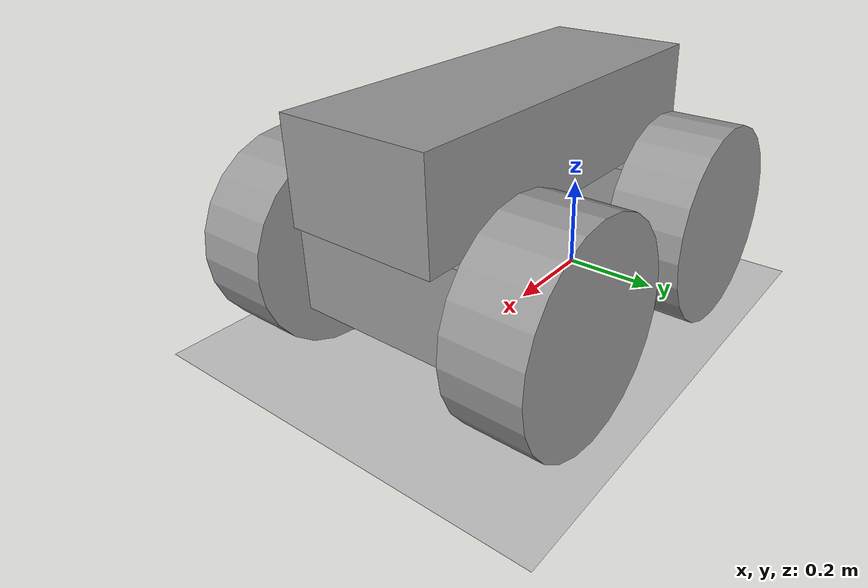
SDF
<sdf version="1.6">
 <world name="default">
  <light name="sun" type="directional">
   <pose>0 0 10 0 -0 0</pose>
   <diffuse>0.8 0.8 0.8 1</diffuse>
   <specular>0.2 0.2 0.2 1</specular>
   <attenuation>
    <range>1000</range>
    <constant>0.9</constant>
    <linear>0.01</linear>
    <quadratic>0.001</quadratic>
   </attenuation>
   <direction>-0.5 0.1 -0.9</direction>
  </light>
  <model name="ground_plane">
   <static>1</static>
   <link name="link">
    <collision name="collision">
     <geometry><plane><normal>0 0 1</normal><size>100 100</size></plane></geometry>
     <surface>
      <contact><collide_bitmask>65535</collide_bitmask></contact>
      <friction><ode><mu>100</mu><mu2>50</mu2></ode></friction>
     </surface>
    </collision>
    <visual name="visual">
     <cast_shadows>0</cast_shadows>
     <geometry><plane><normal>0 0 1</normal><size>100 100</size></plane></geometry>
     <material>
      <script><uri>file://media/materials/scripts/gazebo.material</uri><name>Gazebo/Grey</name></script>
     </material>
    </visual>
   </link>
  </model>
  <gravity>0 0 -9.8</gravity>
  <magnetic_field>6e-06 2.3e-05 -4.2e-05</magnetic_field>
  <atmosphere type="adiabatic"/>
  <physics name="default_physics" default="0" type="ode">
   <max_step_size>0.001</max_step_size>
   <real_time_factor>1</real_time_factor>
   <real_time_update_rate>1000</real_time_update_rate>
  </physics>
  <scene><ambient>0.4 0.4 0.4 1</ambient><background>0.7 0.7 0.7 1</background><shadows>1</shadows></scene>
  <spherical_coordinates>
   <surface_model>EARTH_WGS84</surface_model>
   <latitude_deg>0</latitude_deg>
   <longitude_deg>0</longitude_deg>
   <elevation>0</elevation>
   <heading_deg>0</heading_deg>
  </spherical_coordinates>
  <model name="Robot">
   <link name="link_0">
    <pose>-0.255714 0 -0.028571 0 -0 0</pose>
    <inertial>
     <mass>1</mass>
     <inertia>
      <ixx>0.166667</ixx>
      <ixy>0</ixy>
      <ixz>0</ixz>
      <iyy>0.166667</iyy>
      <iyz>0</iyz>
      <izz>0.166667</izz>
     </inertia>
    </inertial>
    <visual name="visual">
     <geometry><box><size>0.2 0.4 0.2</size></box></geometry>
     <material>
      <lighting>1</lighting>
      <script><uri>file://media/materials/scripts/gazebo.material</uri><name>Gazebo/Grey</name></script>
      <shader type="pixel"><normal_map>__default__</normal_map></shader>
      <ambient>0.3 0.3 0.3 1</ambient>
      <diffuse>0.7 0.7 0.7 1</diffuse>
      <specular>0.01 0.01 0.01 1</specular>
      <emissive>0 0 0 1</emissive>
     </material>
    </visual>
    <collision name="collision">
     <geometry><box><size>0.2 0.4 0.2</size></box></geometry>
     <surface>
      <friction>
       <ode><mu>1</mu><mu2>1</mu2><fdir1>0 0 0</fdir1><slip1>0</slip1><slip2>0</slip2></ode>
       <torsional>
        <coefficient>1</coefficient>
        <patch_radius>0</patch_radius>
        <surface_radius>0</surface_radius>
        <use_patch_radius>1</use_patch_radius>
        <ode><slip>0</slip></ode>
       </torsional>
      </friction>
      <bounce><restitution_coefficient>0</restitution_coefficient><threshold>1e+06</threshold></bounce>
      <contact>
       <collide_without_contact>0</collide_without_contact>
       <collide_without_contact_bitmask>1</collide_without_contact_bitmask>
       <collide_bitmask>1</collide_bitmask>
       <ode>
        <soft_cfm>0</soft_cfm>
        <soft_erp>0.2</soft_erp>
        <kp>1e+13</kp>
        <kd>1</kd>
        <max_vel>0.01</max_vel>
        <min_depth>0</min_depth>
       </ode>
       <bullet>
        <split_impulse>1</split_impulse>
        <split_impulse_penetration_threshold>-0.01</split_impulse_penetration_threshold>
        <soft_cfm>0</soft_cfm>
        <soft_erp>0.2</soft_erp>
        <kp>1e+13</kp>
        <kd>1</kd>
       </bullet>
      </contact>
     </surface>
    </collision>
   </link>
   <link name="link_0_clone">
    <pose>0.244286 0 -0.028571 0 -0 0</pose>
    <inertial>
     <mass>1</mass>
     <inertia>
      <ixx>0.166667</ixx>
      <ixy>0</ixy>
      <ixz>0</ixz>
      <iyy>0.166667</iyy>
      <iyz>0</iyz>
      <izz>0.166667</izz>
     </inertia>
    </inertial>
    <visual name="visual">
     <geometry><box><size>0.2 0.4 0.2</size></box></geometry>
     <material>
      <lighting>1</lighting>
      <script><uri>file://media/materials/scripts/gazebo.material</uri><name>Gazebo/Grey</name></script>
      <shader type="pixel"><normal_map>__default__</normal_map></shader>
      <ambient>0.3 0.3 0.3 1</ambient>
      <diffuse>0.7 0.7 0.7 1</diffuse>
      <specular>0.01 0.01 0.01 1</specular>
      <emissive>0 0 0 1</emissive>
     </material>
    </visual>
    <collision name="collision">
     <geometry><box><size>0.2 0.4 0.2</size></box></geometry>
     <surface>
      <friction>
       <ode><mu>1</mu><mu2>1</mu2><fdir1>0 0 0</fdir1><slip1>0</slip1><slip2>0</slip2></ode>
       <torsional>
        <coefficient>1</coefficient>
        <patch_radius>0</patch_radius>
        <surface_radius>0</surface_radius>
        <use_patch_radius>1</use_patch_radius>
        <ode><slip>0</slip></ode>
       </torsional>
      </friction>
      <bounce><restitution_coefficient>0</restitution_coefficient><threshold>1e+06</threshold></bounce>
      <contact>
       <collide_without_contact>0</collide_without_contact>
       <collide_without_contact_bitmask>1</collide_without_contact_bitmask>
       <collide_bitmask>1</collide_bitmask>
       <ode>
        <soft_cfm>0</soft_cfm>
        <soft_erp>0.2</soft_erp>
        <kp>1e+13</kp>
        <kd>1</kd>
        <max_vel>0.01</max_vel>
        <min_depth>0</min_depth>
       </ode>
       <bullet>
        <split_impulse>1</split_impulse>
        <split_impulse_penetration_threshold>-0.01</split_impulse_penetration_threshold>
        <soft_cfm>0</soft_cfm>
        <soft_erp>0.2</soft_erp>
        <kp>1e+13</kp>
        <kd>1</kd>
       </bullet>
      </contact>
     </surface>
    </collision>
   </link>
   <link name="link_1">
    <pose>-0.235714 -0.275019 -0.028571 1.5707 -0 0</pose>
    <inertial>
     <mass>1</mass>
     <inertia><ixx>0.145833</ixx><ixy>0</ixy><ixz>0</ixz><iyy>0.145833</iyy><iyz>0</iyz><izz>0.125</izz></inertia>
    </inertial>
    <visual name="visual">
     <geometry><cylinder><radius>0.2</radius><length>0.15</length></cylinder></geometry>
     <material>
      <lighting>1</lighting>
      <script><uri>file://media/materials/scripts/gazebo.material</uri><name>Gazebo/Grey</name></script>
      <shader type="pixel"><normal_map>__default__</normal_map></shader>
      <ambient>0.3 0.3 0.3 1</ambient>
      <diffuse>0.7 0.7 0.7 1</diffuse>
      <specular>0.01 0.01 0.01 1</specular>
      <emissive>0 0 0 1</emissive>
     </material>
    </visual>
    <collision name="collision">
     <geometry><cylinder><radius>0.2</radius><length>0.15</length></cylinder></geometry>
     <surface>
      <friction>
       <ode><mu>1</mu><mu2>1</mu2><fdir1>0 0 0</fdir1><slip1>0</slip1><slip2>0</slip2></ode>
       <torsional>
        <coefficient>1</coefficient>
        <patch_radius>0</patch_radius>
        <surface_radius>0</surface_radius>
        <use_patch_radius>1</use_patch_radius>
        <ode><slip>0</slip></ode>
       </torsional>
      </friction>
      <bounce><restitution_coefficient>0</restitution_coefficient><threshold>1e+06</threshold></bounce>
      <contact>
       <collide_without_contact>0</collide_without_contact>
       <collide_without_contact_bitmask>1</collide_without_contact_bitmask>
       <collide_bitmask>1</collide_bitmask>
       <ode>
        <soft_cfm>0</soft_cfm>
        <soft_erp>0.2</soft_erp>
        <kp>1e+13</kp>
        <kd>1</kd>
        <max_vel>0.01</max_vel>
        <min_depth>0</min_depth>
       </ode>
       <bullet>
        <split_impulse>1</split_impulse>
        <split_impulse_penetration_threshold>-0.01</split_impulse_penetration_threshold>
        <soft_cfm>0</soft_cfm>
        <soft_erp>0.2</soft_erp>
        <kp>1e+13</kp>
        <kd>1</kd>
       </bullet>
      </contact>
     </surface>
    </collision>
   </link>
   <link name="link_1_clone">
    <pose>-0.235714 0.275019 -0.028571 1.5707 -0 0</pose>
    <inertial>
     <mass>1</mass>
     <inertia><ixx>0.145833</ixx><ixy>0</ixy><ixz>0</ixz><iyy>0.145833</iyy><iyz>0</iyz><izz>0.125</izz></inertia>
    </inertial>
    <visual name="visual">
     <geometry><cylinder><radius>0.2</radius><length>0.15</length></cylinder></geometry>
     <material>
      <lighting>1</lighting>
      <script><uri>file://media/materials/scripts/gazebo.material</uri><name>Gazebo/Grey</name></script>
      <shader type="pixel"><normal_map>__default__</normal_map></shader>
      <ambient>0.3 0.3 0.3 1</ambient>
      <diffuse>0.7 0.7 0.7 1</diffuse>
      <specular>0.01 0.01 0.01 1</specular>
      <emissive>0 0 0 1</emissive>
     </material>
    </visual>
    <collision name="collision">
     <geometry><cylinder><radius>0.2</radius><length>0.15</length></cylinder></geometry>
     <surface>
      <friction>
       <ode><mu>1</mu><mu2>1</mu2><fdir1>0 0 0</fdir1><slip1>0</slip1><slip2>0</slip2></ode>
       <torsional>
        <coefficient>1</coefficient>
        <patch_radius>0</patch_radius>
        <surface_radius>0</surface_radius>
        <use_patch_radius>1</use_patch_radius>
        <ode><slip>0</slip></ode>
       </torsional>
      </friction>
      <bounce><restitution_coefficient>0</restitution_coefficient><threshold>1e+06</threshold></bounce>
      <contact>
       <collide_without_contact>0</collide_without_contact>
       <collide_without_contact_bitmask>1</collide_without_contact_bitmask>
       <collide_bitmask>1</collide_bitmask>
       <ode>
        <soft_cfm>0</soft_cfm>
        <soft_erp>0.2</soft_erp>
        <kp>1e+13</kp>
        <kd>1</kd>
        <max_vel>0.01</max_vel>
        <min_depth>0</min_depth>
       </ode>
       <bullet>
        <split_impulse>1</split_impulse>
        <split_impulse_penetration_threshold>-0.01</split_impulse_penetration_threshold>
        <soft_cfm>0</soft_cfm>
        <soft_erp>0.2</soft_erp>
        <kp>1e+13</kp>
        <kd>1</kd>
       </bullet>
      </contact>
     </surface>
    </collision>
   </link>
   <link name="link_1_clone_0">
    <pose>0.244286 -0.275019 -0.028571 1.5707 -0 0</pose>
    <inertial>
     <mass>1</mass>
     <inertia><ixx>0.145833</ixx><ixy>0</ixy><ixz>0</ixz><iyy>0.145833</iyy><iyz>0</iyz><izz>0.125</izz></inertia>
    </inertial>
    <visual name="visual">
     <geometry><cylinder><radius>0.2</radius><length>0.15</length></cylinder></geometry>
     <material>
      <lighting>1</lighting>
      <script><uri>file://media/materials/scripts/gazebo.material</uri><name>Gazebo/Grey</name></script>
      <shader type="pixel"><normal_map>__default__</normal_map></shader>
      <ambient>0.3 0.3 0.3 1</ambient>
      <diffuse>0.7 0.7 0.7 1</diffuse>
      <specular>0.01 0.01 0.01 1</specular>
      <emissive>0 0 0 1</emissive>
     </material>
    </visual>
    <collision name="collision">
     <geometry><cylinder><radius>0.2</radius><length>0.15</length></cylinder></geometry>
     <surface>
      <friction>
       <ode><mu>1</mu><mu2>1</mu2><fdir1>0 0 0</fdir1><slip1>0</slip1><slip2>0</slip2></ode>
       <torsional>
        <coefficient>1</coefficient>
        <patch_radius>0</patch_radius>
        <surface_radius>0</surface_radius>
        <use_patch_radius>1</use_patch_radius>
        <ode><slip>0</slip></ode>
       </torsional>
      </friction>
      <bounce><restitution_coefficient>0</restitution_coefficient><threshold>1e+06</threshold></bounce>
      <contact>
       <collide_without_contact>0</collide_without_contact>
       <collide_without_contact_bitmask>1</collide_without_contact_bitmask>
       <collide_bitmask>1</collide_bitmask>
       <ode>
        <soft_cfm>0</soft_cfm>
        <soft_erp>0.2</soft_erp>
        <kp>1e+13</kp>
        <kd>1</kd>
        <max_vel>0.01</max_vel>
        <min_depth>0</min_depth>
       </ode>
       <bullet>
        <split_impulse>1</split_impulse>
        <split_impulse_penetration_threshold>-0.01</split_impulse_penetration_threshold>
        <soft_cfm>0</soft_cfm>
        <soft_erp>0.2</soft_erp>
        <kp>1e+13</kp>
        <kd>1</kd>
       </bullet>
      </contact>
     </surface>
    </collision>
   </link>
   <link name="link_1_clone_0_clone">
    <pose>0.244286 0.275019 -0.028571 1.5707 -0 0</pose>
    <inertial>
     <mass>1</mass>
     <inertia><ixx>0.145833</ixx><ixy>0</ixy><ixz>0</ixz><iyy>0.145833</iyy><iyz>0</iyz><izz>0.125</izz></inertia>
    </inertial>
    <visual name="visual">
     <geometry><cylinder><radius>0.2</radius><length>0.15</length></cylinder></geometry>
     <material>
      <lighting>1</lighting>
      <script><uri>file://media/materials/scripts/gazebo.material</uri><name>Gazebo/Grey</name></script>
      <shader type="pixel"><normal_map>__default__</normal_map></shader>
      <ambient>0.3 0.3 0.3 1</ambient>
      <diffuse>0.7 0.7 0.7 1</diffuse>
      <specular>0.01 0.01 0.01 1</specular>
      <emissive>0 0 0 1</emissive>
     </material>
    </visual>
    <collision name="collision">
     <geometry><cylinder><radius>0.2</radius><length>0.15</length></cylinder></geometry>
     <surface>
      <friction>
       <ode><mu>1</mu><mu2>1</mu2><fdir1>0 0 0</fdir1><slip1>0</slip1><slip2>0</slip2></ode>
       <torsional>
        <coefficient>1</coefficient>
        <patch_radius>0</patch_radius>
        <surface_radius>0</surface_radius>
        <use_patch_radius>1</use_patch_radius>
        <ode><slip>0</slip></ode>
       </torsional>
      </friction>
      <bounce><restitution_coefficient>0</restitution_coefficient><threshold>1e+06</threshold></bounce>
      <contact>
       <collide_without_contact>0</collide_without_contact>
       <collide_without_contact_bitmask>1</collide_without_contact_bitmask>
       <collide_bitmask>1</collide_bitmask>
       <ode>
        <soft_cfm>0</soft_cfm>
        <soft_erp>0.2</soft_erp>
        <kp>1e+13</kp>
        <kd>1</kd>
        <max_vel>0.01</max_vel>
        <min_depth>0</min_depth>
       </ode>
       <bullet>
        <split_impulse>1</split_impulse>
        <split_impulse_penetration_threshold>-0.01</split_impulse_penetration_threshold>
        <soft_cfm>0</soft_cfm>
        <soft_erp>0.2</soft_erp>
        <kp>1e+13</kp>
        <kd>1</kd>
       </bullet>
      </contact>
     </surface>
    </collision>
   </link>
   <link name="link_2">
    <pose>-0.005714 0 0.171429 0 -0 0</pose>
    <inertial>
     <mass>1</mass>
     <inertia>
      <ixx>0.166667</ixx>
      <ixy>0</ixy>
      <ixz>0</ixz>
      <iyy>0.166667</iyy>
      <iyz>0</iyz>
      <izz>0.166667</izz>
     </inertia>
    </inertial>
    <visual name="visual">
     <geometry><box><size>0.8 0.3 0.2</size></box></geometry>
     <material>
      <lighting>1</lighting>
      <script><uri>file://media/materials/scripts/gazebo.material</uri><name>Gazebo/Grey</name></script>
      <shader type="pixel"><normal_map>__default__</normal_map></shader>
      <ambient>0.3 0.3 0.3 1</ambient>
      <diffuse>0.7 0.7 0.7 1</diffuse>
      <specular>0.01 0.01 0.01 1</specular>
      <emissive>0 0 0 1</emissive>
     </material>
    </visual>
    <collision name="collision">
     <geometry><box><size>0.8 0.3 0.2</size></box></geometry>
     <surface>
      <friction>
       <ode><mu>1</mu><mu2>1</mu2><fdir1>0 0 0</fdir1><slip1>0</slip1><slip2>0</slip2></ode>
       <torsional>
        <coefficient>1</coefficient>
        <patch_radius>0</patch_radius>
        <surface_radius>0</surface_radius>
        <use_patch_radius>1</use_patch_radius>
        <ode><slip>0</slip></ode>
       </torsional>
      </friction>
      <bounce><restitution_coefficient>0</restitution_coefficient><threshold>1e+06</threshold></bounce>
      <contact>
       <collide_without_contact>0</collide_without_contact>
       <collide_without_contact_bitmask>1</collide_without_contact_bitmask>
       <collide_bitmask>1</collide_bitmask>
       <ode>
        <soft_cfm>0</soft_cfm>
        <soft_erp>0.2</soft_erp>
        <kp>1e+13</kp>
        <kd>1</kd>
        <max_vel>0.01</max_vel>
        <min_depth>0</min_depth>
       </ode>
       <bullet>
        <split_impulse>1</split_impulse>
        <split_impulse_penetration_threshold>-0.01</split_impulse_penetration_threshold>
        <soft_cfm>0</soft_cfm>
        <soft_erp>0.2</soft_erp>
        <kp>1e+13</kp>
        <kd>1</kd>
       </bullet>
      </contact>
     </surface>
    </collision>
   </link>
   <joint name="link_0_JOINT_0" type="revolute">
    <parent>link_0</parent>
    <child>link_1</child>
    <axis>
     <xyz>0 0 1</xyz>
     <use_parent_model_frame>0</use_parent_model_frame>
     <limit>
      <lower>-1.79769e+308</lower>
      <upper>1.79769e+308</upper>
      <effort>-1</effort>
      <velocity>-1</velocity>
     </limit>
     <dynamics>
      <spring_reference>0</spring_reference>
      <spring_stiffness>0</spring_stiffness>
      <damping>0</damping>
     </dynamics>
    </axis>
    <physics>
     <ode><limit><cfm>0</cfm><erp>0.2</erp></limit><suspension><cfm>0</cfm><erp>0.2</erp></suspension></ode>
    </physics>
   </joint>
   <joint name="link_0_JOINT_1" type="revolute">
    <parent>link_0</parent>
    <child>link_1_clone</child>
    <axis>
     <xyz>0 0 1</xyz>
     <use_parent_model_frame>0</use_parent_model_frame>
     <limit>
      <lower>-1.79769e+308</lower>
      <upper>1.79769e+308</upper>
      <effort>-1</effort>
      <velocity>-1</velocity>
     </limit>
     <dynamics>
      <spring_reference>0</spring_reference>
      <spring_stiffness>0</spring_stiffness>
      <damping>0</damping>
     </dynamics>
    </axis>
    <physics>
     <ode><limit><cfm>0</cfm><erp>0.2</erp></limit><suspension><cfm>0</cfm><erp>0.2</erp></suspension></ode>
    </physics>
   </joint>
   <joint name="link_0_JOINT_5" type="fixed">
    <parent>link_0</parent>
    <child>link_2</child>
    <physics>
     <ode><limit><cfm>0</cfm><erp>0.2</erp></limit><suspension><cfm>0</cfm><erp>0.2</erp></suspension></ode>
    </physics>
   </joint>
   <joint name="link_0_clone_JOINT_2" type="revolute">
    <parent>link_0_clone</parent>
    <child>link_1_clone_0</child>
    <axis>
     <xyz>0 0 1</xyz>
     <use_parent_model_frame>0</use_parent_model_frame>
     <limit>
      <lower>-1.79769e+308</lower>
      <upper>1.79769e+308</upper>
      <effort>-1</effort>
      <velocity>-1</velocity>
     </limit>
     <dynamics>
      <spring_reference>0</spring_reference>
      <spring_stiffness>0</spring_stiffness>
      <damping>0</damping>
     </dynamics>
    </axis>
    <physics>
     <ode><limit><cfm>0</cfm><erp>0.2</erp></limit><suspension><cfm>0</cfm><erp>0.2</erp></suspension></ode>
    </physics>
   </joint>
   <joint name="link_0_clone_JOINT_3" type="revolute">
    <parent>link_0_clone</parent>
    <child>link_1_clone_0_clone</child>
    <axis>
     <xyz>0 0 1</xyz>
     <use_parent_model_frame>0</use_parent_model_frame>
     <limit>
      <lower>-1.79769e+308</lower>
      <upper>1.79769e+308</upper>
      <effort>-1</effort>
      <velocity>-1</velocity>
     </limit>
     <dynamics>
      <spring_reference>0</spring_reference>
      <spring_stiffness>0</spring_stiffness>
      <damping>0</damping>
     </dynamics>
    </axis>
    <physics>
     <ode><limit><cfm>0</cfm><erp>0.2</erp></limit><suspension><cfm>0</cfm><erp>0.2</erp></suspension></ode>
    </physics>
   </joint>
   <joint name="link_0_clone_JOINT_4" type="fixed">
    <parent>link_0_clone</parent>
    <child>link_2</child>
    <physics>
     <ode><limit><cfm>0</cfm><erp>0.2</erp></limit><suspension><cfm>0</cfm><erp>0.2</erp></suspension></ode>
    </physics>
   </joint>
   <static>0</static>
   <pose>0.255714 0 0.228571 0 -0 0</pose>
  </model>
 </world>
</sdf>
